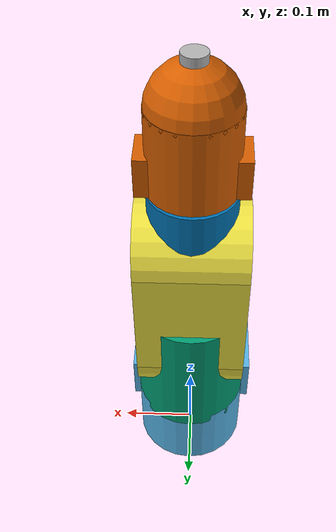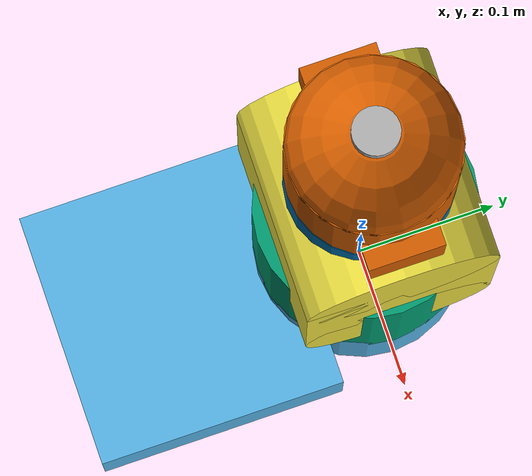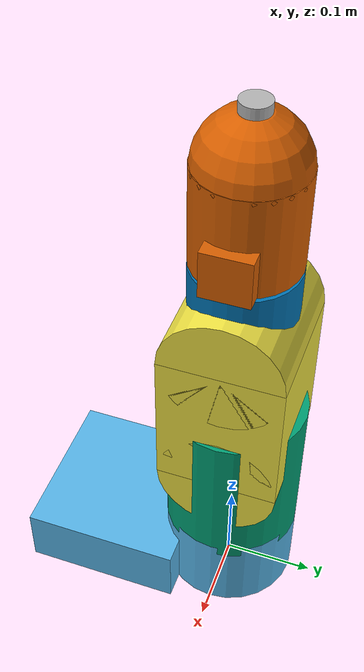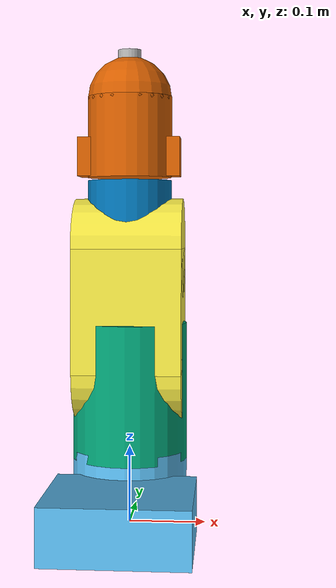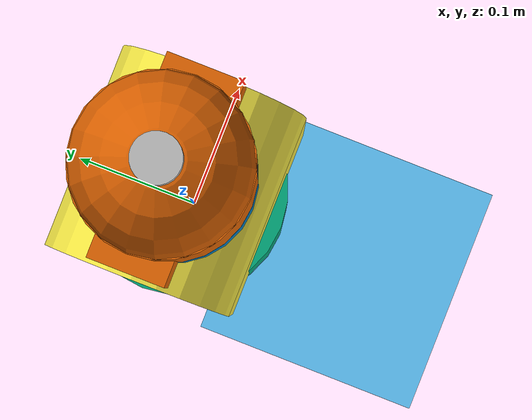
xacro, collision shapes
<?xml version="1.0"?>
<robot xmlns:xacro="http://www.ros.org/wiki/xacro" name="THOR_arm">

  <!-- Load Simulated or Real Hardware Interfaces -->
  <xacro:arg name="is_sim" default="true"/>

  <!-- Include Gazebo Parameters -->
  <xacro:include filename="$(find urdf_thor)/urdf/thor_gazebo.xacro" />

  <!-- Include ros2_control Plugins -->
  <xacro:include filename="$(find moveit_thor)/config/THOR_arm.ros2_control.xacro" />

  <!-- Useful XACRO Variables (Properties) -->
  <xacro:property name="PI" value="3.14159265359" />
  <xacro:property name="effort" value="4.0" />
  <xacro:property name="velocity" value="1.0" />

  <!-- Useful Macros -->
  <xacro:macro name="default_inertial" params="mass">
      <inertial>
          <origin xyz="0 0 0" rpy="0 0 0"/>
          <mass value="${mass}" />
          <inertia ixx="1.0" ixy="0.0" ixz="0.0"
                  iyy="1.0" iyz="0.0"
                  izz="1.0" />
      </inertial>
  </xacro:macro>

  <!-- World Link -->
  <link name="world"/>

  <joint name="virtual_joint" type="fixed">
    <parent link="world"/>
    <child link="base"/>
    <origin xyz="0 0 0" rpy="0 0 0"/>
  </joint>

  <!-- Link robot base -->
  <link name="base">
    <xacro:default_inertial mass="1.0"/>
    <visual>
      <origin xyz="0 0 0" rpy="0 0 -${PI / 2}"/>
      <geometry>
        <mesh filename="package://urdf_thor/meshes/Base.dae" scale="0.001 0.001 0.001" />
      </geometry>
    </visual>
    <collision>
        <origin xyz="0 0 0.049" rpy="0 0 -${PI / 2}"/>
        <geometry>
            <cylinder radius="0.075" length="0.098"/>
        </geometry>
    </collision>
    <collision>
        <origin xyz="0 -0.1312686 0.035250" rpy="0 0 -${PI / 2}"/>
        <geometry>
            <box size="0.176 0.180 0.0705"/>
        </geometry>
    </collision>
  </link>

  <!-- Joint base_art1 -->
  <joint name="art1_yaw" type="revolute">
    <origin xyz="0 0 0.099" rpy="0 0 0"/>
    <axis xyz="0 0 1"/>
    <parent link="base"/>
    <child link="art1"/>
    <limit lower="-2.967" upper="2.967" effort="${effort}" velocity="${velocity}"/>
  </joint>

  <!-- Link art1 -->
  <link name="art1">
    <xacro:default_inertial mass="1.0"/>
    <visual>
      <origin xyz="0 0 0" rpy="0 0 -${PI / 2}"/>
      <geometry>
        <mesh filename="package://urdf_thor/meshes/Art1.dae" scale="0.001 0.001 0.001" />
      </geometry>
    </visual>
    <collision>
        <origin xyz="0 0 0.0765" rpy="0 0 -${PI / 2}"/>
        <geometry>
            <cylinder radius="0.075" length="0.179"/>
        </geometry>
    </collision>
  </link>

  <!-- Joint art1_art2 -->
  <joint name="art2_pitch" type="revolute">
    <origin xyz="0 0 0.103" rpy="0 0 0"/>
    <axis xyz="1 0 0"/>
    <parent link="art1"/>
    <child link="art2"/>
    <limit lower="-${PI / 2}" upper="${PI / 2}" effort="${effort}" velocity="${velocity}"/>
  </joint>

  <!-- Link art2 -->
  <link name="art2">
    <xacro:default_inertial mass="1.0"/>
    <visual>
      <origin xyz="0 0 0" rpy="0 0 -${PI / 2}"/>
      <geometry>
        <mesh filename="package://urdf_thor/meshes/Art2.dae" scale="0.001 0.001 0.001" />
      </geometry>
    </visual>
    <collision>
        <origin xyz="0 0 0" rpy="${PI / 2} 0 -${PI / 2}"/>
        <geometry>
            <cylinder radius="0.065" length="0.140"/>
        </geometry>
    </collision>
    <collision>
        <origin xyz="0 0 0.080" rpy="${PI / 2} 0 -${PI / 2}"/>
        <geometry>
            <box size="0.130 0.160 0.140"/>
        </geometry>
    </collision>
    <collision>
        <origin xyz="0 0 0.160" rpy="${PI / 2} 0 -${PI / 2}"/>
        <geometry>
            <cylinder radius="0.065" length="0.140"/>
        </geometry>
    </collision>
  </link>

  <!-- Joint art2_art3 -->
  <joint name="art3_pitch" type="revolute">
    <origin xyz="0 0 0.160" rpy="0 0 0"/>
    <axis xyz="1 0 0"/>
    <parent link="art2"/>
    <child link="art3"/>
    <limit lower="-${PI / 2}" upper="${PI / 2}" effort="${effort}" velocity="${velocity}"/>
  </joint>

  <!-- Link art3 -->
  <link name="art3">
    <xacro:default_inertial mass="1.0"/>
    <visual>
      <origin xyz="0 0 0" rpy="0 0 -${PI / 2}"/>
      <geometry>
        <mesh filename="package://urdf_thor/meshes/Art3.dae" scale="0.001 0.001 0.001" />
      </geometry>
    </visual>
    <collision>
        <origin xyz="0 0 0.01225" rpy="0 0 -${PI / 2}"/>
        <geometry>
            <cylinder radius="0.055" length="0.1525"/>
        </geometry>
    </collision>
  </link>

  <!-- Joint art3_art4 -->
  <joint name="art4_roll" type="revolute">
    <origin xyz="0 0 0.0895" rpy="0 0 0"/>
    <axis xyz="0 0 1"/>
    <parent link="art3"/>
    <child link="art4"/>
    <limit lower="-2.967" upper="2.967" effort="${effort}" velocity="${velocity}"/>
  </joint>

  <!-- Link art4 -->
  <link name="art4">
    <xacro:default_inertial mass="1.0"/>
    <visual>
      <origin xyz="0 0 0" rpy="0 0 -${PI / 2}"/>
      <geometry>
        <mesh filename="package://urdf_thor/meshes/Art4.dae" scale="0.001 0.001 0.001" />
      </geometry>
    </visual>
    <collision>
        <origin xyz="0 0 0.1045" rpy="0 0 -${PI / 2}"/>
        <geometry>
            <sphere radius="0.055"/>
        </geometry>
    </collision>
    <collision>
        <origin xyz="0 0 0.05525" rpy="0 0 -${PI / 2}"/>
        <geometry>
            <cylinder radius="0.055" length="0.1045"/>
        </geometry>
    </collision>
    <collision>
        <origin xyz="0 0 0.0295" rpy="0 0 -${PI / 2}"/>
        <geometry>
            <box size="0.050 0.132 0.050"/>
        </geometry>
    </collision>
  </link>

  <!-- Joint art4_art5 -->
  <joint name="art5_pitch" type="revolute">
    <origin xyz="0 0 0.1045" rpy="0 0 0"/>
    <axis xyz="1 0 0"/>
    <parent link="art4"/>
    <child link="art5"/>
    <limit lower="-${PI / 2}" upper="${PI / 2}" effort="${effort}" velocity="${velocity}"/>
  </joint>

  <!-- Link art5 -->
  <link name="art5">
    <xacro:default_inertial mass="1.0"/>
    <visual>
      <origin xyz="0 0 0" rpy="0 0 -${PI / 2}"/>
      <geometry>
          <mesh filename="package://urdf_thor/meshes/Art5.dae" scale="0.001 0.001 0.001" />
      </geometry>
    </visual>
    <collision>
        <origin xyz="0 0 0" rpy="${PI / 2} 0 -${PI / 2}"/>
        <geometry>
            <cylinder radius="0.047" length="0.03"/>
        </geometry>
    </collision>
  </link>

  <!-- Joint art5_art6 -->
  <joint name="art6_roll" type="revolute">
    <origin xyz="0 0 0.0135" rpy="0 0 0"/>
    <axis xyz="0 0 1"/>
    <parent link="art5"/>
    <child link="art6"/>
    <limit lower="-2.967" upper="2.967" effort="${effort}" velocity="${velocity}"/>
  </joint>

  <!-- Link art6 -->
  <link name="art6">
    <xacro:default_inertial mass="1.0"/>
    <visual>
      <origin xyz="0 0 0" rpy="0 0 -${PI / 2}"/>
      <geometry>
          <mesh filename="package://urdf_thor/meshes/Art6.dae" scale="0.001 0.001 0.001" />
      </geometry>
    </visual>
    <collision>
        <origin xyz="0 0 0.025" rpy="0 0 -${PI / 2}"/>
        <geometry>
            <cylinder radius="0.015" length="0.05"/>
        </geometry>
    </collision>
  </link>

</robot>
